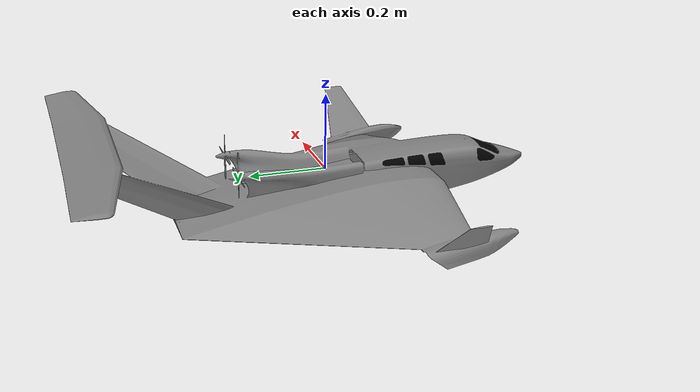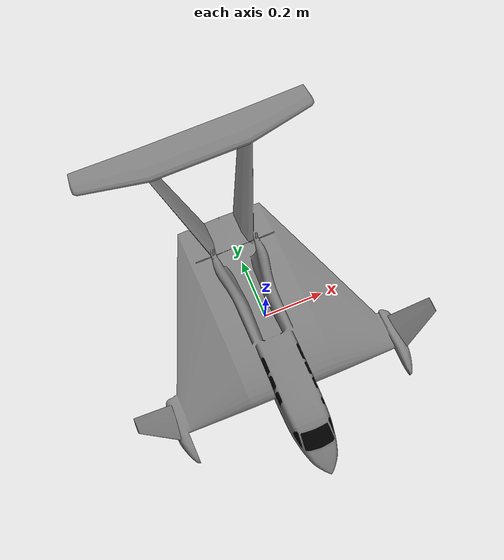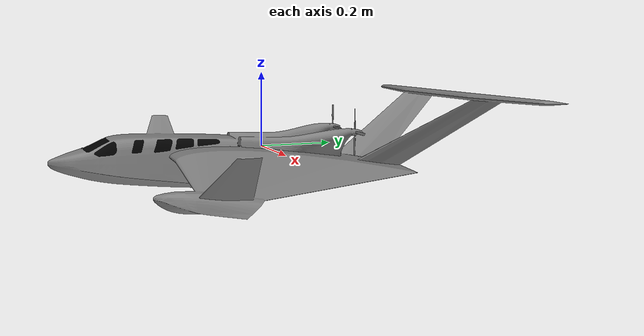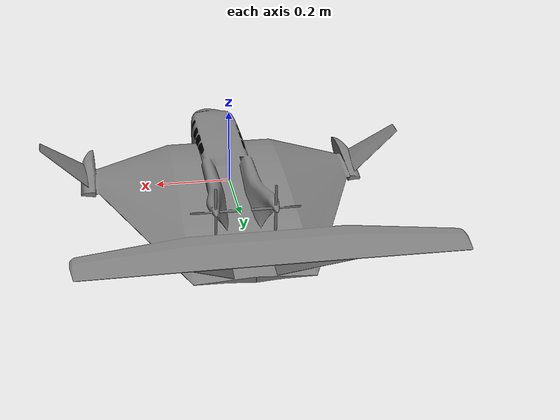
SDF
<?xml version="1.0" ?>
<sdf version="1.6">
  <model name="mi_ekranoplano">
    <static>true</static>
    <link name="base_link">
      <visual name="visual">

        <pose>0 0 0 0 0 0</pose>
        <geometry>
          <mesh>
            <uri>model://mi_ekranoplano/meshes/AIRFISH-8_EKRANOPLANO.dae</uri>
            <scale>1 1 1</scale>
          </mesh>
        </geometry>
      </visual>

      <collision name="collision">
        <pose>0 0 0 0 0 0</pose>
        <geometry>
          <mesh>
            <uri>model://mi_ekranoplano/meshes/AIRFISH-8_EKRANOPLANO.dae</uri>
            <scale>1 1 1</scale>
          </mesh>
        </geometry>
      </collision>

    </link>
  </model>
</sdf>
